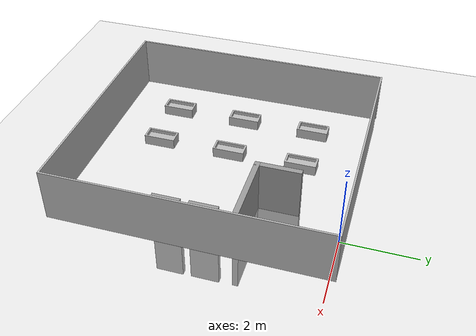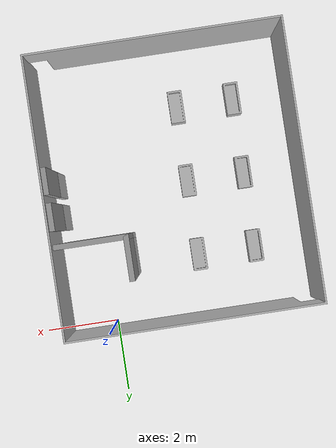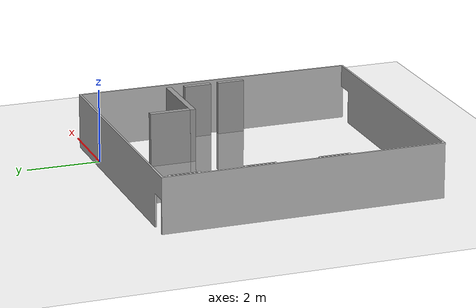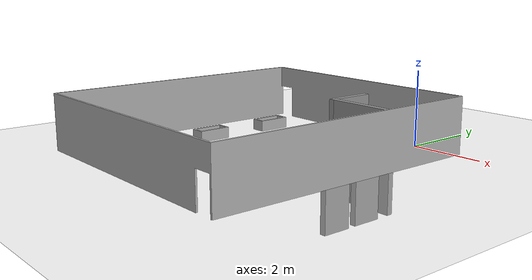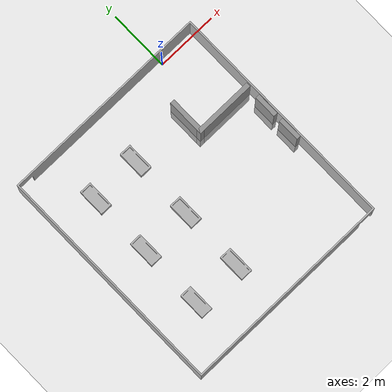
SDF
<sdf version="1.7">
 <world name="default">
  <light name="sun" type="directional">
   <pose>0 0 10 0 -0 0</pose>
   <diffuse>0.8 0.8 0.8 1</diffuse>
   <specular>0.2 0.2 0.2 1</specular>
   <attenuation>
    <range>1000</range>
    <constant>0.9</constant>
    <linear>0.01</linear>
    <quadratic>0.001</quadratic>
   </attenuation>
   <direction>-0.5 0.1 -0.9</direction>
   <spot><inner_angle>0</inner_angle><outer_angle>0</outer_angle><falloff>0</falloff></spot>
  </light>
  <model name="ground_plane">
   <static>1</static>
   <link name="link">
    <collision name="collision">
     <geometry><plane><normal>0 0 1</normal><size>100 100</size></plane></geometry>
     <surface>
      <contact><collide_bitmask>65535</collide_bitmask></contact>
      <friction><ode><mu>100</mu><mu2>50</mu2></ode></friction>
     </surface>
    </collision>
    <visual name="visual">
     <cast_shadows>0</cast_shadows>
     <geometry><plane><normal>0 0 1</normal><size>100 100</size></plane></geometry>
     <material>
      <script><uri>file://media/materials/scripts/gazebo.material</uri><name>Gazebo/Grey</name></script>
     </material>
    </visual>
   </link>
  </model>
  <gravity>0 0 -9.8</gravity>
  <magnetic_field>6e-06 2.3e-05 -4.2e-05</magnetic_field>
  <atmosphere type="adiabatic"/>
  <physics type="ode">
   <max_step_size>0.001</max_step_size>
   <real_time_factor>1</real_time_factor>
   <real_time_update_rate>1000</real_time_update_rate>
  </physics>
  <scene><ambient>0.4 0.4 0.4 1</ambient><background>0.7 0.7 0.7 1</background><shadows>1</shadows></scene>
  <audio><device>default</device></audio>
  <spherical_coordinates>
   <surface_model>EARTH_WGS84</surface_model>
   <latitude_deg>0</latitude_deg>
   <longitude_deg>0</longitude_deg>
   <elevation>0</elevation>
   <heading_deg>0</heading_deg>
  </spherical_coordinates>
  <model name="test_m">
   <static>1</static>
   <link name="full_mesh">
    <pose>0 0 0 1.5708 -0 0</pose>
    <visual name="visual">
     <geometry>
      <mesh><uri>model://model_test_1/meshes/model_test_1.stl</uri><scale>0.01 0.01 0.01</scale></mesh>
     </geometry>
    </visual>
    <collision name="collision">
     <geometry>
      <mesh><uri>model://model_test_1/meshes/model_test_1.stl</uri><scale>0.01 0.01 0.01</scale></mesh>
     </geometry>
    </collision>
   </link>
   <pose>-5.55759 0.112196 0 0 -0 0</pose>
  </model>
  <model name="smart_farm01">
   <pose>0.233624 -2.2117 -1.05899 0 -0 0</pose>
   <link name="Wall_0">
    <collision name="Wall_0_Collision">
     <geometry><box><size>2 0.15 2.5</size></box></geometry>
     <pose>0 0 1.25 0 -0 0</pose>
    </collision>
    <visual name="Wall_0_Visual">
     <pose>0 0 1.25 0 -0 0</pose>
     <geometry><box><size>2 0.15 2.5</size></box></geometry>
     <material>
      <script><uri>file://media/materials/scripts/gazebo.material</uri><name>Gazebo/Grey</name></script>
      <ambient>1 1 1 1</ambient>
     </material>
     <meta><layer>0</layer></meta>
    </visual>
    <pose>-0.015 -0.1275 0 0 -0 3.14159</pose>
   </link>
   <link name="Wall_3">
    <collision name="Wall_3_Collision">
     <geometry><box><size>1.25 0.15 2.5</size></box></geometry>
     <pose>0 0 1.25 0 -0 0</pose>
    </collision>
    <visual name="Wall_3_Visual">
     <pose>0 0 1.25 0 -0 0</pose>
     <geometry><box><size>1.25 0.15 2.5</size></box></geometry>
     <material>
      <script><uri>file://media/materials/scripts/gazebo.material</uri><name>Gazebo/Grey</name></script>
      <ambient>1 1 1 1</ambient>
     </material>
     <meta><layer>0</layer></meta>
    </visual>
    <pose>-0.94 0.4225 0 0 -0 1.5708</pose>
   </link>
   <link name="Wall_5">
    <collision name="Wall_5_Collision">
     <geometry><box><size>0.75 0.15 2.5</size></box></geometry>
     <pose>0 0 1.25 0 -0 0</pose>
    </collision>
    <visual name="Wall_5_Visual">
     <pose>0 0 1.25 0 -0 0</pose>
     <geometry><box><size>0.75 0.15 2.5</size></box></geometry>
     <material>
      <script><uri>file://media/materials/scripts/gazebo.material</uri><name>Gazebo/Grey</name></script>
      <ambient>1 1 1 1</ambient>
     </material>
     <meta><layer>0</layer></meta>
    </visual>
    <pose>0.93 -0.9275 0 0 -0 -1.5708</pose>
   </link>
   <link name="Wall_7">
    <collision name="Wall_7_Collision">
     <geometry><box><size>0.73 0.15 2.5</size></box></geometry>
     <pose>0 0 1.25 0 -0 0</pose>
    </collision>
    <visual name="Wall_7_Visual">
     <pose>0 0 1.25 0 -0 0</pose>
     <geometry><box><size>0.73 0.15 2.5</size></box></geometry>
     <material>
      <script><uri>file://media/materials/scripts/gazebo.material</uri><name>Gazebo/Grey</name></script>
      <ambient>1 1 1 1</ambient>
     </material>
     <meta><layer>0</layer></meta>
    </visual>
    <pose>0.94 -1.8775 0 0 -0 -1.5708</pose>
   </link>
   <static>1</static>
  </model>
 </world>
</sdf>
